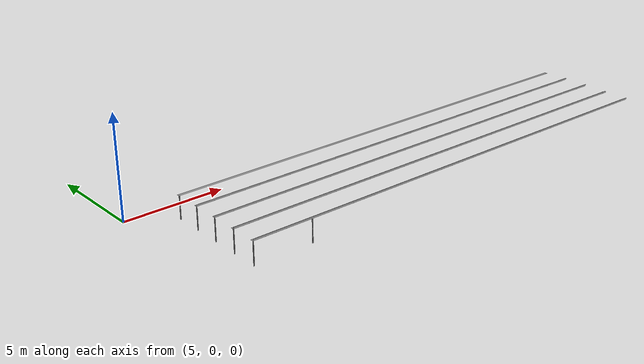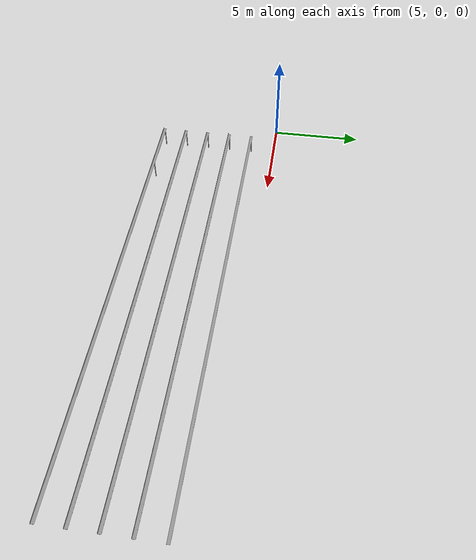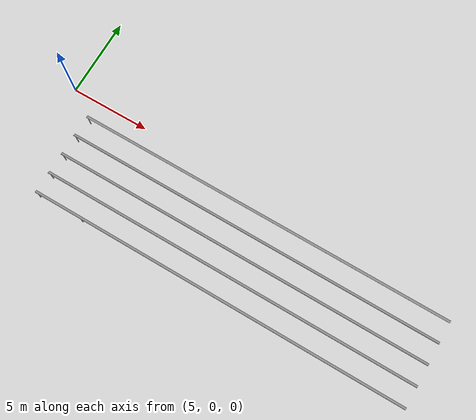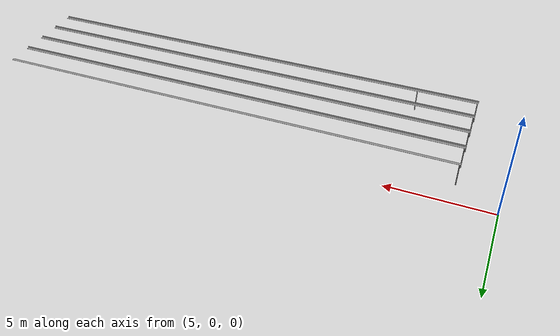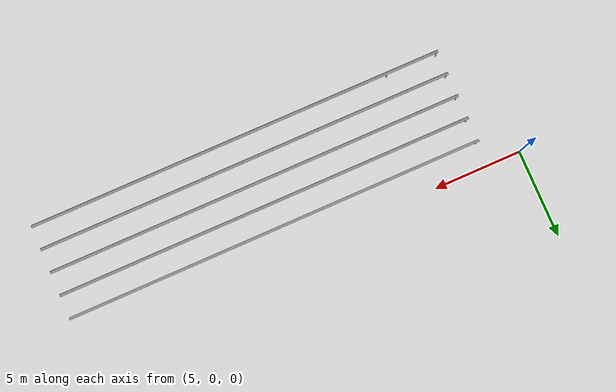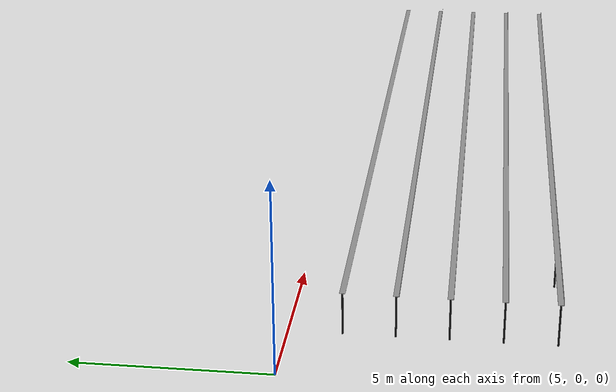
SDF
<sdf version="1.4">
 <world name="default">
  <model name="pole_0">
   <static>1</static>
   <pose>7.000 -6.640 0.575 0.0 0.0 0.0</pose>
   <link name="link">
    <collision name="collision">
     <geometry><cylinder><length>1.15</length><radius>0.025</radius></cylinder></geometry>
    </collision>
    <visual name="visual">
     <geometry><cylinder><length>1.15</length><radius>0.025</radius></cylinder></geometry>
     <material>
      <script><uri>file://media/materials/scripts/gazebo.material</uri><name>Gazebo/Chrome</name></script>
      <shader type="vertex"><normal_map>__default__</normal_map></shader>
      <emissive>0.1 0.1 0.1 1</emissive>
      <specular>0.01 0.01 0.01 1</specular>
      <ambient>0.5 0.5 0.5 1</ambient>
      <diffuse>0.05 0.05 0.05 1</diffuse>
     </material>
    </visual>
   </link>
  </model>
  <model name="pole_1">
   <static>1</static>
   <pose>7.000 -5.320 0.575 0.0 0.0 0.0</pose>
   <link name="link">
    <collision name="collision">
     <geometry><cylinder><length>1.15</length><radius>0.025</radius></cylinder></geometry>
    </collision>
    <visual name="visual">
     <geometry><cylinder><length>1.15</length><radius>0.025</radius></cylinder></geometry>
     <material>
      <script><uri>file://media/materials/scripts/gazebo.material</uri><name>Gazebo/Chrome</name></script>
      <shader type="vertex"><normal_map>__default__</normal_map></shader>
      <emissive>0.1 0.1 0.1 1</emissive>
      <specular>0.01 0.01 0.01 1</specular>
      <ambient>0.5 0.5 0.5 1</ambient>
      <diffuse>0.05 0.05 0.05 1</diffuse>
     </material>
    </visual>
   </link>
  </model>
  <model name="pole_2">
   <static>1</static>
   <pose>7.000 -4.000 0.575 0.0 0.0 0.0</pose>
   <link name="link">
    <collision name="collision">
     <geometry><cylinder><length>1.15</length><radius>0.025</radius></cylinder></geometry>
    </collision>
    <visual name="visual">
     <geometry><cylinder><length>1.15</length><radius>0.025</radius></cylinder></geometry>
     <material>
      <script><uri>file://media/materials/scripts/gazebo.material</uri><name>Gazebo/Chrome</name></script>
      <shader type="vertex"><normal_map>__default__</normal_map></shader>
      <emissive>0.1 0.1 0.1 1</emissive>
      <specular>0.01 0.01 0.01 1</specular>
      <ambient>0.5 0.5 0.5 1</ambient>
      <diffuse>0.05 0.05 0.05 1</diffuse>
     </material>
    </visual>
   </link>
  </model>
  <model name="pole_3">
   <static>1</static>
   <pose>7.000 -2.680 0.575 0.0 0.0 0.0</pose>
   <link name="link">
    <collision name="collision">
     <geometry><cylinder><length>1.15</length><radius>0.025</radius></cylinder></geometry>
    </collision>
    <visual name="visual">
     <geometry><cylinder><length>1.15</length><radius>0.025</radius></cylinder></geometry>
     <material>
      <script><uri>file://media/materials/scripts/gazebo.material</uri><name>Gazebo/Chrome</name></script>
      <shader type="vertex"><normal_map>__default__</normal_map></shader>
      <emissive>0.1 0.1 0.1 1</emissive>
      <specular>0.01 0.01 0.01 1</specular>
      <ambient>0.5 0.5 0.5 1</ambient>
      <diffuse>0.05 0.05 0.05 1</diffuse>
     </material>
    </visual>
   </link>
  </model>
  <model name="pole_4">
   <static>1</static>
   <pose>7.000 -1.360 0.575 0.0 0.0 0.0</pose>
   <link name="link">
    <collision name="collision">
     <geometry><cylinder><length>1.15</length><radius>0.025</radius></cylinder></geometry>
    </collision>
    <visual name="visual">
     <geometry><cylinder><length>1.15</length><radius>0.025</radius></cylinder></geometry>
     <material>
      <script><uri>file://media/materials/scripts/gazebo.material</uri><name>Gazebo/Chrome</name></script>
      <shader type="vertex"><normal_map>__default__</normal_map></shader>
      <emissive>0.1 0.1 0.1 1</emissive>
      <specular>0.01 0.01 0.01 1</specular>
      <ambient>0.5 0.5 0.5 1</ambient>
      <diffuse>0.05 0.05 0.05 1</diffuse>
     </material>
    </visual>
   </link>
  </model>
  <model name="pole_5">
   <static>1</static>
   <pose>9.940 -6.640 0.575 0.0 0.0 0.0</pose>
   <link name="link">
    <collision name="collision">
     <geometry><cylinder><length>1.15</length><radius>0.025</radius></cylinder></geometry>
    </collision>
    <visual name="visual">
     <geometry><cylinder><length>1.15</length><radius>0.025</radius></cylinder></geometry>
     <material>
      <script><uri>file://media/materials/scripts/gazebo.material</uri><name>Gazebo/Chrome</name></script>
      <shader type="vertex"><normal_map>__default__</normal_map></shader>
      <emissive>0.1 0.1 0.1 1</emissive>
      <specular>0.01 0.01 0.01 1</specular>
      <ambient>0.5 0.5 0.5 1</ambient>
      <diffuse>0.05 0.05 0.05 1</diffuse>
     </material>
    </visual>
   </link>
  </model>
  <model name="tray_0">
   <static>1</static>
   <link name="link_0">
    <collision name="collision"><geometry><box><size>23.620 0.15 0.005</size></box></geometry></collision>
    <visual name="visual">
     <geometry><box><size>23.620 0.15 0.005</size></box></geometry>
     <material>
      <script><uri>file://media/materials/scripts/gazebo.material</uri><name>Gazebo/Grey</name></script>
      <emissive>0 0 0 1</emissive>
      <shader type="vertex"><normal_map>__default__</normal_map></shader>
      <specular>0.01 0.01 0.01 1</specular>
      <lighting>1</lighting>
      <ambient>0.7 0.7 0.7 1</ambient>
      <diffuse>0.3 0.3 0.3 1</diffuse>
     </material>
    </visual>
    <pose>18.760 -6.640 1.14965 0.0 0.0 0.0</pose>
   </link>
  </model>
  <model name="tray_1">
   <static>1</static>
   <link name="link_0">
    <collision name="collision"><geometry><box><size>23.620 0.15 0.005</size></box></geometry></collision>
    <visual name="visual">
     <geometry><box><size>23.620 0.15 0.005</size></box></geometry>
     <material>
      <script><uri>file://media/materials/scripts/gazebo.material</uri><name>Gazebo/Grey</name></script>
      <emissive>0 0 0 1</emissive>
      <shader type="vertex"><normal_map>__default__</normal_map></shader>
      <specular>0.01 0.01 0.01 1</specular>
      <lighting>1</lighting>
      <ambient>0.7 0.7 0.7 1</ambient>
      <diffuse>0.3 0.3 0.3 1</diffuse>
     </material>
    </visual>
    <pose>18.760 -5.320 1.14965 0.0 0.0 0.0</pose>
   </link>
  </model>
  <model name="tray_2">
   <static>1</static>
   <link name="link_0">
    <collision name="collision"><geometry><box><size>23.620 0.15 0.005</size></box></geometry></collision>
    <visual name="visual">
     <geometry><box><size>23.620 0.15 0.005</size></box></geometry>
     <material>
      <script><uri>file://media/materials/scripts/gazebo.material</uri><name>Gazebo/Grey</name></script>
      <emissive>0 0 0 1</emissive>
      <shader type="vertex"><normal_map>__default__</normal_map></shader>
      <specular>0.01 0.01 0.01 1</specular>
      <lighting>1</lighting>
      <ambient>0.7 0.7 0.7 1</ambient>
      <diffuse>0.3 0.3 0.3 1</diffuse>
     </material>
    </visual>
    <pose>18.760 -4.000 1.14965 0.0 0.0 0.0</pose>
   </link>
  </model>
  <model name="tray_3">
   <static>1</static>
   <link name="link_0">
    <collision name="collision"><geometry><box><size>23.620 0.15 0.005</size></box></geometry></collision>
    <visual name="visual">
     <geometry><box><size>23.620 0.15 0.005</size></box></geometry>
     <material>
      <script><uri>file://media/materials/scripts/gazebo.material</uri><name>Gazebo/Grey</name></script>
      <emissive>0 0 0 1</emissive>
      <shader type="vertex"><normal_map>__default__</normal_map></shader>
      <specular>0.01 0.01 0.01 1</specular>
      <lighting>1</lighting>
      <ambient>0.7 0.7 0.7 1</ambient>
      <diffuse>0.3 0.3 0.3 1</diffuse>
     </material>
    </visual>
    <pose>18.760 -2.680 1.14965 0.0 0.0 0.0</pose>
   </link>
  </model>
  <model name="tray_4">
   <static>1</static>
   <link name="link_0">
    <collision name="collision"><geometry><box><size>23.620 0.15 0.005</size></box></geometry></collision>
    <visual name="visual">
     <geometry><box><size>23.620 0.15 0.005</size></box></geometry>
     <material>
      <script><uri>file://media/materials/scripts/gazebo.material</uri><name>Gazebo/Grey</name></script>
      <emissive>0 0 0 1</emissive>
      <shader type="vertex"><normal_map>__default__</normal_map></shader>
      <specular>0.01 0.01 0.01 1</specular>
      <lighting>1</lighting>
      <ambient>0.7 0.7 0.7 1</ambient>
      <diffuse>0.3 0.3 0.3 1</diffuse>
     </material>
    </visual>
    <pose>18.760 -1.360 1.14965 0.0 0.0 0.0</pose>
   </link>
  </model>
  <model name="tray_p2_0">
   <static>1</static>
   <link name="link_0">
    <collision name="collision"><geometry><box><size>23.62 0.085 0.005</size></box></geometry></collision>
    <visual name="visual">
     <geometry><box><size>23.62 0.085 0.005</size></box></geometry>
     <material>
      <script><uri>file://media/materials/scripts/gazebo.material</uri><name>Gazebo/Grey</name></script>
      <emissive>0 0 0 1</emissive>
      <shader type="vertex"><normal_map>__default__</normal_map></shader>
      <specular>0.01 0.01 0.01 1</specular>
      <lighting>1</lighting>
      <ambient>0.7 0.7 0.7 1</ambient>
      <diffuse>0.3 0.3 0.3 1</diffuse>
     </material>
    </visual>
    <pose>18.760 -6.715 1.19165 1.5707 0.0 0.0</pose>
   </link>
  </model>
  <model name="tray_p2_1">
   <static>1</static>
   <link name="link_0">
    <collision name="collision"><geometry><box><size>23.62 0.085 0.005</size></box></geometry></collision>
    <visual name="visual">
     <geometry><box><size>23.62 0.085 0.005</size></box></geometry>
     <material>
      <script><uri>file://media/materials/scripts/gazebo.material</uri><name>Gazebo/Grey</name></script>
      <emissive>0 0 0 1</emissive>
      <shader type="vertex"><normal_map>__default__</normal_map></shader>
      <specular>0.01 0.01 0.01 1</specular>
      <lighting>1</lighting>
      <ambient>0.7 0.7 0.7 1</ambient>
      <diffuse>0.3 0.3 0.3 1</diffuse>
     </material>
    </visual>
    <pose>18.760 -5.395 1.19165 1.5707 0.0 0.0</pose>
   </link>
  </model>
  <model name="tray_p2_2">
   <static>1</static>
   <link name="link_0">
    <collision name="collision"><geometry><box><size>23.62 0.085 0.005</size></box></geometry></collision>
    <visual name="visual">
     <geometry><box><size>23.62 0.085 0.005</size></box></geometry>
     <material>
      <script><uri>file://media/materials/scripts/gazebo.material</uri><name>Gazebo/Grey</name></script>
      <emissive>0 0 0 1</emissive>
      <shader type="vertex"><normal_map>__default__</normal_map></shader>
      <specular>0.01 0.01 0.01 1</specular>
      <lighting>1</lighting>
      <ambient>0.7 0.7 0.7 1</ambient>
      <diffuse>0.3 0.3 0.3 1</diffuse>
     </material>
    </visual>
    <pose>18.760 -4.075 1.19165 1.5707 0.0 0.0</pose>
   </link>
  </model>
  <model name="tray_p2_3">
   <static>1</static>
   <link name="link_0">
    <collision name="collision"><geometry><box><size>23.62 0.085 0.005</size></box></geometry></collision>
    <visual name="visual">
     <geometry><box><size>23.62 0.085 0.005</size></box></geometry>
     <material>
      <script><uri>file://media/materials/scripts/gazebo.material</uri><name>Gazebo/Grey</name></script>
      <emissive>0 0 0 1</emissive>
      <shader type="vertex"><normal_map>__default__</normal_map></shader>
      <specular>0.01 0.01 0.01 1</specular>
      <lighting>1</lighting>
      <ambient>0.7 0.7 0.7 1</ambient>
      <diffuse>0.3 0.3 0.3 1</diffuse>
     </material>
    </visual>
    <pose>18.760 -2.755 1.19165 1.5707 0.0 0.0</pose>
   </link>
  </model>
  <include><uri>model://sun</uri></include>
 </world>
</sdf>
